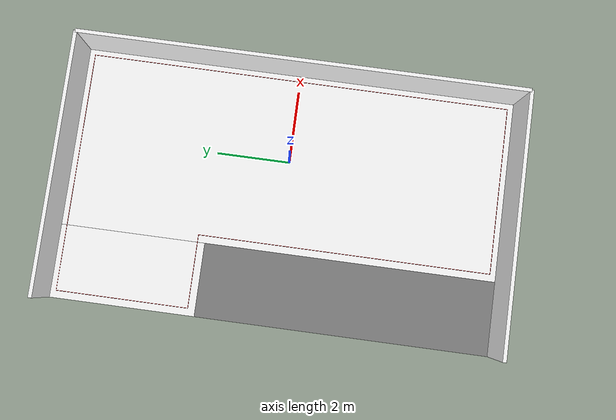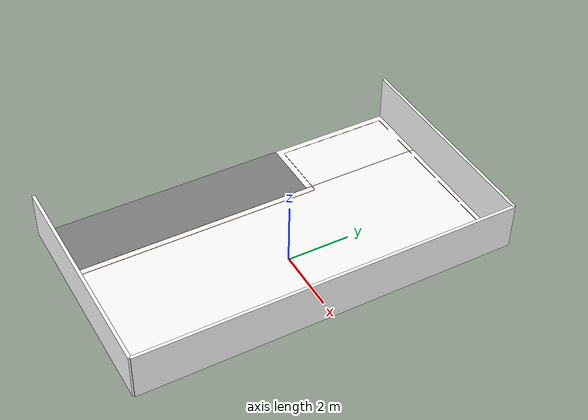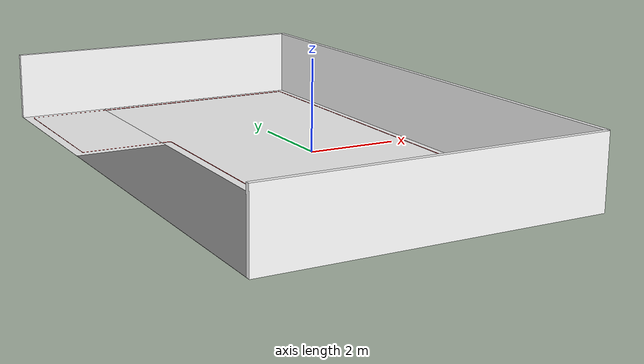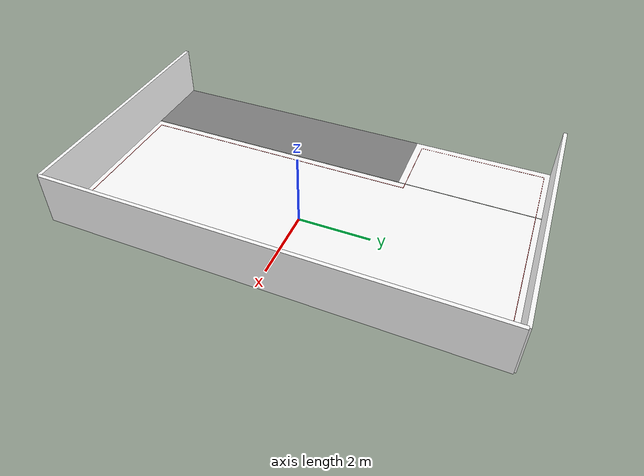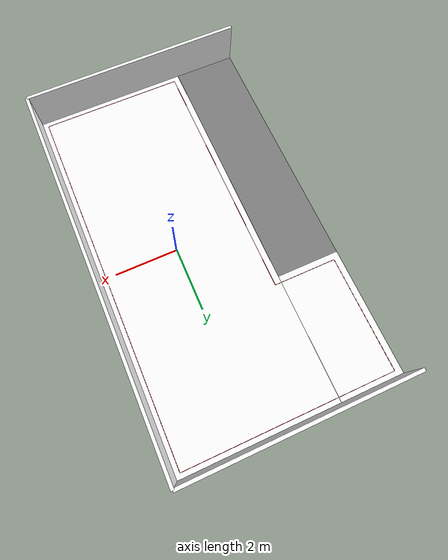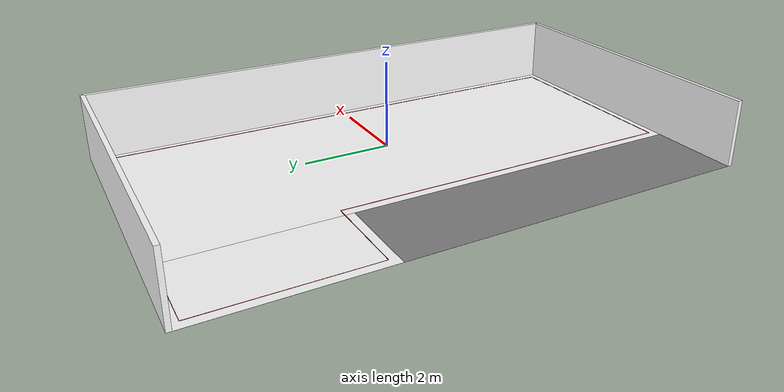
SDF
<sdf version='1.10'>
  <world name='garden'>
    <physics name='1ms' type='ignored'>
      <max_step_size>0.001</max_step_size>
      <real_time_factor>1</real_time_factor>
      <real_time_update_rate>1000</real_time_update_rate>
    </physics>
    <plugin name='gz::sim::systems::Physics' filename='gz-sim-physics-system'/>
    <plugin name='gz::sim::systems::UserCommands' filename='gz-sim-user-commands-system'/>
    <plugin name='gz::sim::systems::SceneBroadcaster' filename='gz-sim-scene-broadcaster-system'/>
    <plugin name='gz::sim::systems::Contact' filename='gz-sim-contact-system'/>
    <gui fullscreen='false'>
      <plugin name='3D View' filename='MinimalScene'>
        <gz-gui>
          <title>3D View</title>
          <property type='bool' key='showTitleBar'>false</property>
          <property type='string' key='state'>docked</property>
        </gz-gui>
        <engine>ogre2</engine>
        <scene>scene</scene>
        <ambient_light>0.4 0.4 0.4</ambient_light>
        <background_color>0.8 0.8 0.8</background_color>
        <camera_pose>-4 0 6 0 0.95 0</camera_pose>
        <view_controller>orbit</view_controller>
        <camera_clip>
          <near>0.25</near>
          <far>25000</far>
        </camera_clip>
      </plugin>
      <plugin name='Scene Manager' filename='GzSceneManager'>
        <gz-gui>
          <property key='resizable' type='bool'>false</property>
          <property key='width' type='double'>5</property>
          <property key='height' type='double'>5</property>
          <property key='state' type='string'>floating</property>
          <property key='showTitleBar' type='bool'>false</property>
        </gz-gui>
      </plugin>
      <plugin name='World control' filename='WorldControl'>
        <gz-gui>
          <title>World control</title>
          <property type='bool' key='showTitleBar'>false</property>
          <property type='bool' key='resizable'>talse</property>
          <property type='double' key='height'>72</property>
          <property type='double' key='width'>121</property>
          <property type='double' key='z'>1</property>
          <property type='string' key='state'>floating</property>
          <anchors target='3D View'>
            <line own='left' target='left'/>
            <line own='bottom' target='bottom'/>
          </anchors>
        </gz-gui>
        <play_pause>true</play_pause>
        <step>true</step>
        <start_paused>true</start_paused>
        <service>/world/world_demo/control</service>
        <stats_topic>/world/world_demo/stats</stats_topic>
      </plugin>
      <plugin name='World stats' filename='WorldStats'>
        <gz-gui>
          <title>World stats</title>
          <property type='bool' key='showTitleBar'>false</property>
          <property type='bool' key='resizable'>false</property>
          <property type='double' key='height'>110</property>
          <property type='double' key='width'>290</property>
          <property type='double' key='z'>1</property>
          <property type='string' key='state'>floating</property>
          <anchors target='3D View'>
            <line own='right' target='right'/>
            <line own='bottom' target='bottom'/>
          </anchors>
        </gz-gui>
        <sim_time>true</sim_time>
        <real_time>true</real_time>
        <real_time_factor>true</real_time_factor>
        <iterations>true</iterations>
        <topic>/world/world_demo/stats</topic>
      </plugin>
      <plugin filename="InteractiveViewControl" name="Interactive view control">
        <gz-gui>
          <property key="resizable" type="bool">false</property>
          <property key="width" type="double">5</property>
          <property key="height" type="double">5</property>
          <property key="state" type="string">floating</property>
          <property key="showTitleBar" type="bool">false</property>
        </gz-gui>
      </plugin>
    </gui>
    <gravity>0 0 -9.8000000000000007</gravity>
    <magnetic_field>5.5644999999999998e-06 2.2875799999999999e-05 -4.2388400000000002e-05</magnetic_field>
    <atmosphere type='adiabatic'/>
    <scene>
      <ambient>0.400000006 0.400000006 0.400000006 1</ambient>
      <background>0.699999988 0.699999988 0.699999988 1</background>
      <shadows>true</shadows>
    </scene>

  <light name="sun" type="directional">
    <cast_shadows>true</cast_shadows> <!-- Schatten aktivieren -->
    <pose>0 0 10 0 0 0</pose> <!-- Position der Sonne -->
    <diffuse>1.0 1.0 0.9 1</diffuse> <!-- Farbe des Lichts -->
    <specular>0.5 0.5 0.5 1</specular> <!-- Spiegelung -->
    <attenuation>
      <range>1000</range>
      <constant>0.9</constant>
      <linear>0.01</linear>
      <quadratic>0.001</quadratic>
    </attenuation>
    <direction>-0.5 -0.5 -1</direction> <!-- Richtung der Sonne -->
  </light>

    <model name='grass'>
      <static>true</static>
      <link name='link_grass'>
        <collision name='collision_grass_1'>
          <pose>0 0 0 0 0 0</pose>
          <geometry>
            <plane>
              <normal>0 0 1</normal>
              <size>5 12</size>
            </plane>
          </geometry>
          <surface>
            <friction>
              <ode/>
            </friction>
            <bounce/>
            <contact/>
          </surface>
        </collision>
        <visual name='visual_grass_1'>
          <pose>0 0 0 0 0 0</pose>
          <cast_shadows>false</cast_shadows>
          <geometry>
            <plane>
              <normal>0 0 1</normal>
              <size>5 12</size>
            </plane>
          </geometry>
          <material>
            <diffuse>1 1 1 1</diffuse>
            <specular>1 1 1 1</specular>
            <pbr>
              <metal>
                <albedo_map>materials/textures/grass_dry.png</albedo_map>
                <normal_map>materials/textures/grass_dry.png</normal_map>
              </metal>
            </pbr>
          </material>
        </visual>
        <collision name='collision_grass_2'>
          <pose>-3.5 4 0 0 0 0</pose>
          <geometry>
            <plane>
              <normal>0 0 1</normal>
              <size>2 4</size>
            </plane>
          </geometry>
          <surface>
            <friction>
              <ode/>
            </friction>
            <bounce/>
            <contact/>
          </surface>
        </collision>
        <visual name='visual_grass_2'>
          <pose>-3.5 4 0 0 0 0</pose>
          <cast_shadows>false</cast_shadows>
          <geometry>
            <plane>
              <normal>0 0 1</normal>
              <size>2 4</size>
            </plane>
          </geometry>
          <material>
            <diffuse>1 1 1 1</diffuse>
            <specular>1 1 1 1</specular>
            <pbr>
              <metal>
                <albedo_map>materials/textures/grass_dry.png</albedo_map>
                <normal_map>materials/textures/grass_dry.png</normal_map>
              </metal>
            </pbr>
          </material>
        </visual>
      </link>
      </model>

      <model name='stones'>
      <static>true</static>
      <link name = 'link_stones'>
        <collision name='collision_stones'>
          <pose>-3.5 -2 0 0 0 0</pose>
          <geometry>
            <plane>
              <normal>0 0 1</normal>
              <size>2 8</size>
            </plane>
          </geometry>
          <surface>
            <friction>
              <ode/>
            </friction>
            <bounce/>
            <contact/>
          </surface>
        </collision>
        <visual name='visual_stones'>
          <pose>-3.5 -2 0 0 0 0</pose>
          <cast_shadows>false</cast_shadows>
          <geometry>
            <plane>
              <normal>0 0 1</normal>
              <size>2 8</size>
            </plane>
          </geometry>
          <material>
            <diffuse>0.5 0.5 0.5 1</diffuse>
            <specular>0.5 0.5 0.5 1</specular>
          </material>
        </visual>
      </link>
      </model>

        <model name = "boundary">
        <static>true</static>
        <link name="link_boundary">

        <collision name="collision_boundary_wire_1">
          <pose>2.3 0 0.0 0 1.5700000000000001 1.5700000000000001</pose>
          <geometry>
            <cylinder>
              <radius>0.005</radius>
              <length>11.6</length>
            </cylinder>
          </geometry>
        </collision>
        <visual name="visual_boundary_wire_1">
        <pose>2.3 0 0.0 0 1.5700000000000001 1.5700000000000001</pose>
          <geometry>
            <cylinder>
              <radius>0.005</radius>
              <length>11.6</length>
            </cylinder>
          </geometry>
          <material>
            <ambient>1.0 0.0 0.0 1.0</ambient> <!-- Red color -->
            <diffuse>1.0 0.0 0.0 1.0</diffuse> <!-- Red color -->
          </material>
        </visual>

        <collision name="collision_boundary_wire_2">
          <pose>-1 5.8 0.0 1.5700000000000001 0 1.5700000000000001</pose>
          <geometry>
            <cylinder>
              <radius>0.005</radius>
              <length>6.6</length>
            </cylinder>
          </geometry>
        </collision>
        <visual name="visual_boundary_wire_2">
        <pose>-1 5.8 0.0 1.5700000000000001 0 1.5700000000000001</pose>
          <geometry>
            <cylinder>
              <radius>0.005</radius>
              <length>6.6</length>
            </cylinder>
          </geometry>
          <material>
            <ambient>1.0 0.0 0.0 1.0</ambient> <!-- Red color -->
            <diffuse>1.0 0.0 0.0 1.0</diffuse> <!-- Red color -->
          </material>
        </visual>

        <collision name="collision_boundary_wire_3">
          <pose>0 -5.8 0.0 1.5700000000000001 0 1.5700000000000001</pose>
          <geometry>
            <cylinder>
              <radius>0.005</radius>
              <length>4.6</length>
            </cylinder>
          </geometry>
        </collision>
        <visual name="visual_boundary_wire_3">
        <pose>0 -5.8 0.0 1.5700000000000001 0 1.5700000000000001</pose>
          <geometry>
            <cylinder>
              <radius>0.005</radius>
              <length>4.6</length>
            </cylinder>
          </geometry>
          <material>
            <ambient>1.0 0.0 0.0 1.0</ambient> <!-- Red color -->
            <diffuse>1.0 0.0 0.0 1.0</diffuse> <!-- Red color -->
          </material>
        </visual>

        <collision name="collision_boundary_wire_4">
          <pose>-3.3 2.2 0.0 1.5700000000000001 0 1.5700000000000001</pose>
          <geometry>
            <cylinder>
              <radius>0.005</radius>
              <length>2</length>
            </cylinder>
          </geometry>
        </collision>
        <visual name="visual_boundary_wire_4">
        <pose>-3.3 2.2 0.0 1.5700000000000001 0 1.5700000000000001</pose>
          <geometry>
            <cylinder>
              <radius>0.005</radius>
              <length>2</length>
            </cylinder>
          </geometry>
          <material>
            <ambient>1.0 0.0 0.0 1.0</ambient> <!-- Red color -->
            <diffuse>1.0 0.0 0.0 1.0</diffuse> <!-- Red color -->
          </material>
        </visual>

        <collision name="collision_boundary_wire_5">
          <pose>-4.3 4 0.0 0 1.5700000000000001 1.5700000000000001</pose>
          <geometry>
            <cylinder>
              <radius>0.005</radius>
              <length>3.6</length>
            </cylinder>
          </geometry>
        </collision>
        <visual name="visual_boundary_wire_5">
        <pose>-4.3 4 0.0 0 1.5700000000000001 1.5700000000000001</pose>
          <geometry>
            <cylinder>
              <radius>0.005</radius>
              <length>3.6</length>
            </cylinder>
          </geometry>
          <material>
            <ambient>1.0 0.0 0.0 1.0</ambient> <!-- Red color -->
            <diffuse>1.0 0.0 0.0 1.0</diffuse> <!-- Red color -->
          </material>
        </visual>

        <collision name="collision_boundary_wire_6">
          <pose>-2.3 -1.8 0.0 0 1.5700000000000001 1.5700000000000001</pose>
          <geometry>
            <cylinder>
              <radius>0.005</radius>
              <length>8</length>
            </cylinder>
          </geometry>
        </collision>
        <visual name="visual_boundary_wire_6">
        <pose>-2.3 -1.8 0.0 0 1.5700000000000001 1.5700000000000001</pose>
          <geometry>
            <cylinder>
              <radius>0.005</radius>
              <length>8</length>
            </cylinder>
          </geometry>
          <material>
            <ambient>1.0 0.0 0.0 1.0</ambient> <!-- Red color -->
            <diffuse>1.0 0.0 0.0 1.0</diffuse> <!-- Red color -->
          </material>
        </visual>
        <sensor name='sensor_contact' type='contact'>
          <contact>
              <collision>collision</collision>
          </contact>
        </sensor>
        </link>
        <plugin filename="gz-sim-touchplugin-system"
                    name="gz::sim::systems::TouchPlugin">
                <target>robot</target>
                <namespace>boundary</namespace>
                <time>0.001</time>
                <enabled>true</enabled>
            </plugin>
        </model>

<model name = "fence">
<static>true</static>
<link name = "link_fence">
        <collision name='collision_fence_1'>
          <pose>2.5 0 0.75 0 0 0</pose>
          <geometry>
            <box>
              <size>0.10000000000000001 12 1.5</size>
            </box>
          </geometry>
          <surface>
            <friction>
              <ode/>
            </friction>
            <bounce/>
            <contact/>
          </surface>
        </collision>
        <visual name='visual_fence_1'>
          <pose>2.5 0 0.75 0 0 0</pose>
          <cast_shadows>false</cast_shadows>
          <geometry>
            <box>
              <size>0.10000000000000001 12 1.5</size>
            </box>
          </geometry>
          <material>
            <diffuse>1 1 1 1</diffuse>
            <specular>1 1 1 1</specular>
            <pbr>
              <metal>
                <albedo_map>materials/textures/woodboarding4.jpg</albedo_map>
                <normal_map>materials/textures/woodboarding4.jpg</normal_map>
              </metal>
            </pbr>
          </material>
        </visual>
        <collision name='collision_fence_2'>
          <pose>-1 -6 0.75 0 0 1.5700000000000001</pose>
          <geometry>
            <box>
              <size>0.10000000000000001 7 1.5</size>
            </box>
          </geometry>
          <surface>
            <friction>
              <ode/>
            </friction>
            <bounce/>
            <contact/>
          </surface>
        </collision>
        <visual name='visual_fence_2'>
          <pose>-1 -6 0.75 0 0 1.5700000000000001</pose>
          <cast_shadows>false</cast_shadows>
          <geometry>
            <box>
              <size>0.10000000000000001 7 1.5</size>
            </box>
          </geometry>
          <material>
            <diffuse>1 1 1 1</diffuse>
            <specular>1 1 1 1</specular>
            <pbr>
              <metal>
                <albedo_map>materials/textures/woodboarding4.jpg</albedo_map>
                <normal_map>materials/textures/woodboarding4.jpg</normal_map>
              </metal>
            </pbr>
          </material>
        </visual>
        <collision name='collision_fence_3'>
          <pose>-1 6 0.75 0 0 1.5700000000000001</pose>
          <geometry>
            <box>
              <size>0.10000000000000001 7 1.5</size>
            </box>
          </geometry>
          <surface>
            <friction>
              <ode/>
            </friction>
            <bounce/>
            <contact/>
          </surface>
        </collision>
        <visual name='visual_fence_3'>
          <pose>-1 6 0.75 0 0 1.5700000000000001</pose>
          <cast_shadows>false</cast_shadows>
          <geometry>
            <box>
              <size>0.10000000000000001 7 1.5</size>
            </box>
          </geometry>
          <material>
            <diffuse>1 1 1 1</diffuse>
            <specular>1 1 1 1</specular>
            <pbr>
              <metal>
                <albedo_map>materials/textures/woodboarding4.jpg</albedo_map>
                <normal_map>materials/textures/woodboarding4.jpg</normal_map>
              </metal>
            </pbr>
          </material>
        </visual>
        <pose>0 0 0 0 0 0</pose>
        <inertial>
          <pose>0 0 0 0 0 0</pose>
          <mass>1</mass>
          <inertia>
            <ixx>1</ixx>
            <ixy>0</ixy>
            <ixz>0</ixz>
            <iyy>1</iyy>
            <iyz>0</iyz>
            <izz>1</izz>
          </inertia>
        </inertial>
        <enable_wind>false</enable_wind>
      </link>
      <pose>0 0 0 0 0 0</pose>
      <self_collide>false</self_collide>
    </model>

    <!-- IMU PLUGIN -->
    <plugin
      filename="gz-sim-imu-system"
      name="gz::sim::systems::Imu">
    </plugin>

    <!-- COLLISION SENSOR PLUGIN -->
    <plugin filename="gz-sim-contact-system"
        name="gz::sim::systems::Contact">
    </plugin>

  </world>
</sdf>
